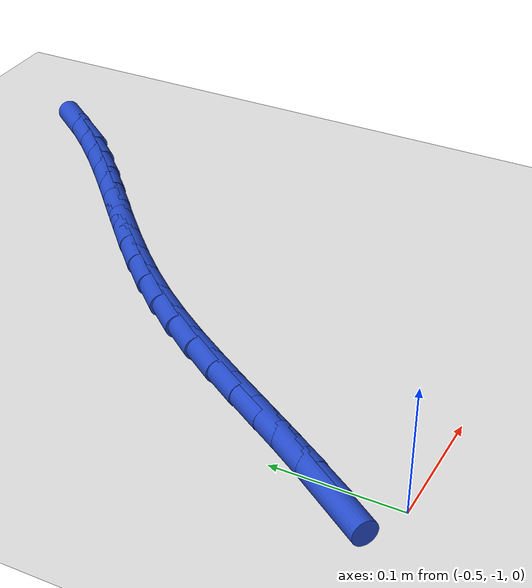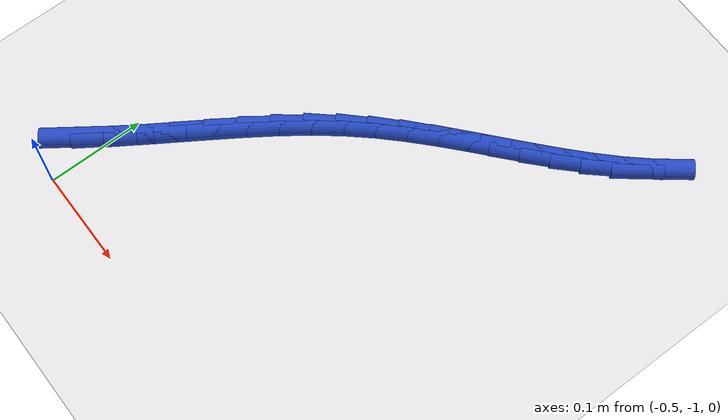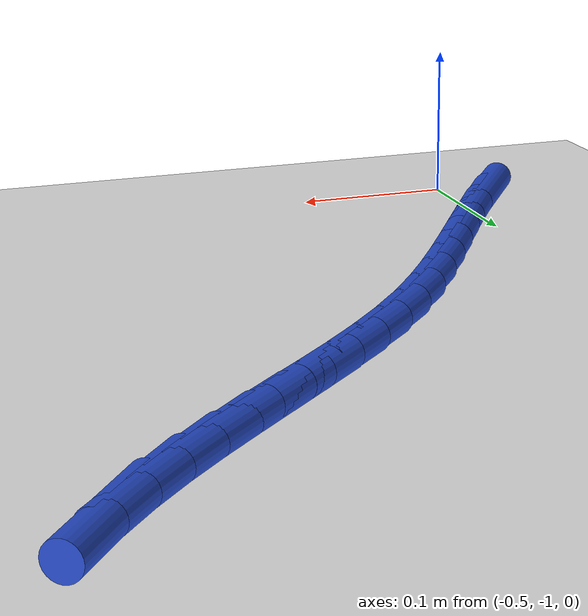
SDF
<sdf version="1.6">
 <world name="default">
  <model name="ground_plane">
   <static>1</static>
   <link name="link">
    <collision name="collision">
     <geometry><plane><normal>0 0 1</normal><size>100 100</size></plane></geometry>
     <surface><friction><ode><mu>100</mu><mu2>50</mu2></ode></friction></surface>
    </collision>
    <visual name="visual">
     <cast_shadows>0</cast_shadows>
     <geometry><plane><normal>0 0 1</normal><size>100 100</size></plane></geometry>
     <material>
      <script><uri>file://media/materials/scripts/gazebo.material</uri><name>Gazebo/WhiteGlow</name></script>
     </material>
    </visual>
   </link>
  </model>
  <model name="line">
   <link name="link_193">
    <pose>-0.5171804204153535 -0.9544127968129977 0.01 0 1.57 0.954890031921646</pose>
    <collision name="collision">
     <geometry><cylinder><radius>0.01</radius><length>0.08</length></cylinder></geometry>
    </collision>
    <visual name="visual">
     <material>
      <script><name>Gazebo/Blue</name><uri>file://media/materials/scripts/gazebo.material</uri></script>
     </material>
     <geometry><cylinder><radius>0.01</radius><length>0.08</length></cylinder></geometry>
    </visual>
   </link>
   <link name="link_194">
    <pose>-0.49924840894945716 -0.9290760378085268 0.01 0 1.57 0.9826046442423729</pose>
    <collision name="collision">
     <geometry><cylinder><radius>0.01</radius><length>0.08</length></cylinder></geometry>
    </collision>
    <visual name="visual">
     <material>
      <script><name>Gazebo/Blue</name><uri>file://media/materials/scripts/gazebo.material</uri></script>
     </material>
     <geometry><cylinder><radius>0.01</radius><length>0.08</length></cylinder></geometry>
    </visual>
   </link>
   <link name="link_195">
    <pose>-0.48171033474721053 -0.9027797007147818 0.01 0 1.57 0.9979667026800298</pose>
    <collision name="collision">
     <geometry><cylinder><radius>0.01</radius><length>0.08</length></cylinder></geometry>
    </collision>
    <visual name="visual">
     <material>
      <script><name>Gazebo/Blue</name><uri>file://media/materials/scripts/gazebo.material</uri></script>
     </material>
     <geometry><cylinder><radius>0.01</radius><length>0.08</length></cylinder></geometry>
    </visual>
   </link>
   <link name="link_196">
    <pose>-0.46435750036828477 -0.8758747452408508 0.01 0 1.57 1.0016863843199906</pose>
    <collision name="collision">
     <geometry><cylinder><radius>0.01</radius><length>0.08</length></cylinder></geometry>
    </collision>
    <visual name="visual">
     <material>
      <script><name>Gazebo/Blue</name><uri>file://media/materials/scripts/gazebo.material</uri></script>
     </material>
     <geometry><cylinder><radius>0.01</radius><length>0.08</length></cylinder></geometry>
    </visual>
   </link>
   <link name="link_197">
    <pose>-0.4469812083723499 -0.8487121310958211 0.01 0 1.57 0.9940733559395889</pose>
    <collision name="collision">
     <geometry><cylinder><radius>0.01</radius><length>0.08</length></cylinder></geometry>
    </collision>
    <visual name="visual">
     <material>
      <script><name>Gazebo/Blue</name><uri>file://media/materials/scripts/gazebo.material</uri></script>
     </material>
     <geometry><cylinder><radius>0.01</radius><length>0.08</length></cylinder></geometry>
    </visual>
   </link>
   <link name="link_198">
    <pose>-0.4293727613190777 -0.8216428179887814 0.01 0 1.57 0.9750525236122264</pose>
    <collision name="collision">
     <geometry><cylinder><radius>0.01</radius><length>0.08</length></cylinder></geometry>
    </collision>
    <visual name="visual">
     <material>
      <script><name>Gazebo/Blue</name><uri>file://media/materials/scripts/gazebo.material</uri></script>
     </material>
     <geometry><cylinder><radius>0.01</radius><length>0.08</length></cylinder></geometry>
    </visual>
   </link>
   <link name="link_199">
    <pose>-0.41132346176813867 -0.7950177656288188 0.01 0 1.57 0.944193417757693</pose>
    <collision name="collision">
     <geometry><cylinder><radius>0.01</radius><length>0.08</length></cylinder></geometry>
    </collision>
    <visual name="visual">
     <material>
      <script><name>Gazebo/Blue</name><uri>file://media/materials/scripts/gazebo.material</uri></script>
     </material>
     <geometry><cylinder><radius>0.01</radius><length>0.08</length></cylinder></geometry>
    </visual>
   </link>
   <link name="link_200">
    <pose>-0.39262461227920364 -0.7691879337250215 0.01 0 1.57 0.9007622102335255</pose>
    <collision name="collision">
     <geometry><cylinder><radius>0.01</radius><length>0.08</length></cylinder></geometry>
    </collision>
    <visual name="visual">
     <material>
      <script><name>Gazebo/Blue</name><uri>file://media/materials/scripts/gazebo.material</uri></script>
     </material>
     <geometry><cylinder><radius>0.01</radius><length>0.08</length></cylinder></geometry>
    </visual>
   </link>
   <link name="link_201">
    <pose>-0.373067515411943 -0.7445042819864763 0.01 0 1.57 0.8471214850086144</pose>
    <collision name="collision">
     <geometry><cylinder><radius>0.01</radius><length>0.08</length></cylinder></geometry>
    </collision>
    <visual name="visual">
     <material>
      <script><name>Gazebo/Blue</name><uri>file://media/materials/scripts/gazebo.material</uri></script>
     </material>
     <geometry><cylinder><radius>0.01</radius><length>0.08</length></cylinder></geometry>
    </visual>
   </link>
   <link name="link_202">
    <pose>-0.35250534824777596 -0.7212331360740197 0.01 0 1.57 0.7990516065754463</pose>
    <collision name="collision">
     <geometry><cylinder><radius>0.01</radius><length>0.08</length></cylinder></geometry>
    </collision>
    <visual name="visual">
     <material>
      <script><name>Gazebo/Blue</name><uri>file://media/materials/scripts/gazebo.material</uri></script>
     </material>
     <geometry><cylinder><radius>0.01</radius><length>0.08</length></cylinder></geometry>
    </visual>
   </link>
   <link name="link_203">
    <pose>-0.3310930740903913 -0.6992280283213407 0.01 0 1.57 0.762059998579847</pose>
    <collision name="collision">
     <geometry><cylinder><radius>0.01</radius><length>0.08</length></cylinder></geometry>
    </collision>
    <visual name="visual">
     <material>
      <script><name>Gazebo/Blue</name><uri>file://media/materials/scripts/gazebo.material</uri></script>
     </material>
     <geometry><cylinder><radius>0.01</radius><length>0.08</length></cylinder></geometry>
    </visual>
   </link>
   <link name="link_204">
    <pose>-0.30907752625557555 -0.6782168281750914 0.01 0 1.57 0.7366219666237729</pose>
    <collision name="collision">
     <geometry><cylinder><radius>0.01</radius><length>0.08</length></cylinder></geometry>
    </collision>
    <visual name="visual">
     <material>
      <script><name>Gazebo/Blue</name><uri>file://media/materials/scripts/gazebo.material</uri></script>
     </material>
     <geometry><cylinder><radius>0.01</radius><length>0.08</length></cylinder></geometry>
    </visual>
   </link>
   <link name="link_205">
    <pose>-0.2867055598276621 -0.6579273753061753 0.01 0 1.57 0.723059925467695</pose>
    <collision name="collision">
     <geometry><cylinder><radius>0.01</radius><length>0.08</length></cylinder></geometry>
    </collision>
    <visual name="visual">
     <material>
      <script><name>Gazebo/Blue</name><uri>file://media/materials/scripts/gazebo.material</uri></script>
     </material>
     <geometry><cylinder><radius>0.01</radius><length>0.08</length></cylinder></geometry>
    </visual>
   </link>
   <link name="link_206">
    <pose>-0.26422402989098376 -0.6380875093854951 0.01 0 1.57 0.7216424803462482</pose>
    <collision name="collision">
     <geometry><cylinder><radius>0.01</radius><length>0.08</length></cylinder></geometry>
    </collision>
    <visual name="visual">
     <material>
      <script><name>Gazebo/Blue</name><uri>file://media/materials/scripts/gazebo.material</uri></script>
     </material>
     <geometry><cylinder><radius>0.01</radius><length>0.08</length></cylinder></geometry>
    </visual>
   </link>
   <link name="link_207">
    <pose>-0.241879791529875 -0.6184250700839548 0.01 0 1.57 0.732641240425577</pose>
    <collision name="collision">
     <geometry><cylinder><radius>0.01</radius><length>0.08</length></cylinder></geometry>
    </collision>
    <visual name="visual">
     <material>
      <script><name>Gazebo/Blue</name><uri>file://media/materials/scripts/gazebo.material</uri></script>
     </material>
     <geometry><cylinder><radius>0.01</radius><length>0.08</length></cylinder></geometry>
    </visual>
   </link>
   <link name="link_208">
    <pose>-0.2199196998286686 -0.598667897072457 0.01 0 1.57 0.7563368388567079</pose>
    <collision name="collision">
     <geometry><cylinder><radius>0.01</radius><length>0.08</length></cylinder></geometry>
    </collision>
    <visual name="visual">
     <material>
      <script><name>Gazebo/Blue</name><uri>file://media/materials/scripts/gazebo.material</uri></script>
     </material>
     <geometry><cylinder><radius>0.01</radius><length>0.08</length></cylinder></geometry>
    </visual>
   </link>
   <link name="link_209">
    <pose>-0.19859060987169802 -0.5785438300219056 0.01 0 1.57 0.7929654864901489</pose>
    <collision name="collision">
     <geometry><cylinder><radius>0.01</radius><length>0.08</length></cylinder></geometry>
    </collision>
    <visual name="visual">
     <material>
      <script><name>Gazebo/Blue</name><uri>file://media/materials/scripts/gazebo.material</uri></script>
     </material>
     <geometry><cylinder><radius>0.01</radius><length>0.08</length></cylinder></geometry>
    </visual>
   </link>
   <link name="link_210">
    <pose>-0.17813937674329614 -0.5577807086032028 0.01 0 1.57 0.842598278854212</pose>
    <collision name="collision">
     <geometry><cylinder><radius>0.01</radius><length>0.08</length></cylinder></geometry>
    </collision>
    <visual name="visual">
     <material>
      <script><name>Gazebo/Blue</name><uri>file://media/materials/scripts/gazebo.material</uri></script>
     </material>
     <geometry><cylinder><radius>0.01</radius><length>0.08</length></cylinder></geometry>
    </visual>
   </link>
   <link name="link_211">
    <pose>-0.15881285552779725 -0.5361063724872529 0.01 0 1.57 0.9048925480919228</pose>
    <collision name="collision">
     <geometry><cylinder><radius>0.01</radius><length>0.08</length></cylinder></geometry>
    </collision>
    <visual name="visual">
     <material>
      <script><name>Gazebo/Blue</name><uri>file://media/materials/scripts/gazebo.material</uri></script>
     </material>
     <geometry><cylinder><radius>0.01</radius><length>0.08</length></cylinder></geometry>
    </visual>
   </link>
  </model>
 </world>
</sdf>
